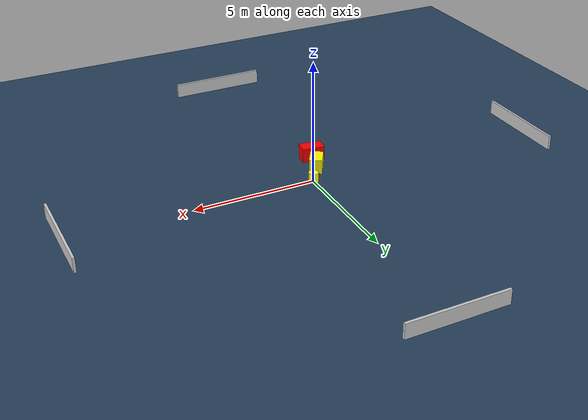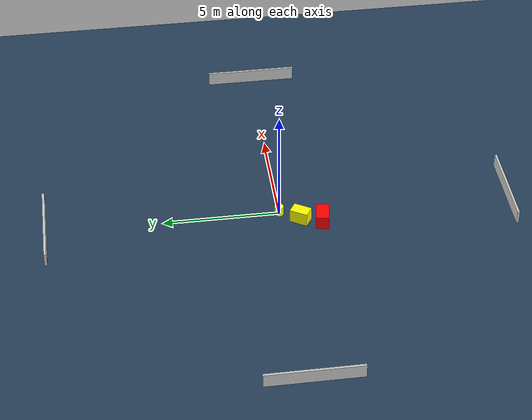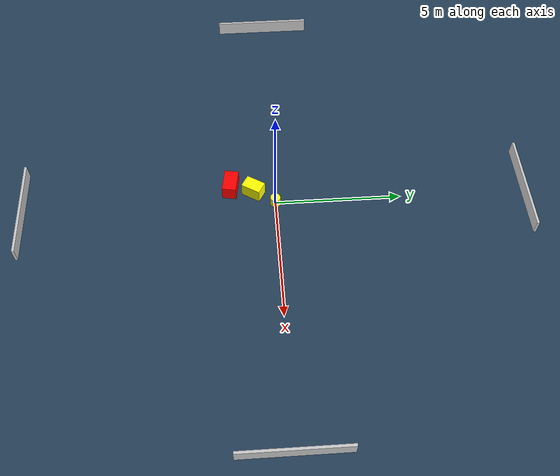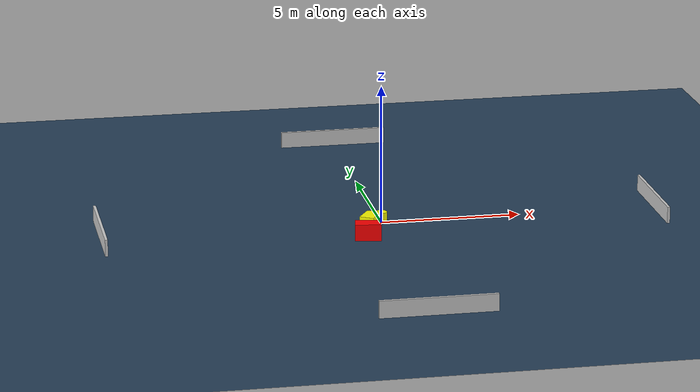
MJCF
<?xml version="1.0" ?>
<mujoco model="generated_environment">
  <option timestep="0.01" integrator="RK4" cone="elliptic"/>
  <default>
    <geom density="1"/>
  </default>
  <asset>
    <texture builtin="gradient" height="3072" name="skybox" rgb1="0.3 0.5 0.7" rgb2="0 0 0" type="skybox" width="512"/>
    <texture builtin="checker" height="300" name="groundplane" rgb1="0.2 0.3 0.4" rgb2="0.1 0.2 0.3" type="2d" width="300"/>
    <material name="groundplane" reflectance="0.2" texrepeat="5 5" texture="groundplane"/>
  </asset>
  <worldbody>
    <light dir="0 0 -1" directional="true" pos="0 0 1.5"/>
    <geom condim="3" friction="0.5 0.005 0.001" material="groundplane" name="floor" pos="0 0 0" size="0 0 0.05" type="plane"/>
    <body name="walls">
      <geom name="wall_1" condim="4" pos="-10.0 0.0 0.3" rgba="0.800000011920929 0.800000011920929 0.800000011920929 1.0" size="0.05 2.0 0.3" type="box"/>
      <geom name="wall_2" condim="4" pos="10.0 0.0 0.3" rgba="0.800000011920929 0.800000011920929 0.800000011920929 1.0" size="0.05 2.0 0.3" type="box"/>
      <geom name="wall_3" condim="4" pos="0.0 -10.0 0.3" rgba="0.800000011920929 0.800000011920929 0.800000011920929 1.0" size="2.0 0.05 0.3" type="box"/>
      <geom name="wall_4" condim="4" pos="0.0 10.0 0.3" rgba="0.800000011920929 0.800000011920929 0.800000011920929 1.0" size="2.0 0.05 0.3" type="box"/>
    </body>
    <body name="robot">
      <joint name="joint_x" type="slide" pos="0 0 0" axis="1 0 0"/>
      <joint name="joint_y" type="slide" pos="0 0 0" axis="0 1 0"/>
      <geom name="robot" type="cylinder" pos="0.0 0.0 0.2" size="0.2 0.2 0.0" mass="5.0" friction="1.0 0.005 0.0001" condim="4" rgba="1.0 1.0 0.0 1.0"/>
    </body>
    <body name="obstacle_1_movable">
      <geom name="obstacle_1_movable" condim="4" pos="-0.5547611009738872 -0.8504515414616578 0.3" euler="0 0 238.6662550670331" friction="0.0 0.005 0.001" rgba="1.0 1.0 0.0 1.0" size="0.3941656768587929 0.2598411649422411 0.3" type="box" mass="0.1"/>
      <joint type="free"/>
    </body>
    <body name="obstacle_2_static">
      <geom name="obstacle_2_static" condim="4" pos="-0.80361949660166 -1.758929022486041 0.3" euler="0 0 260.6766241114701" friction="0.0 0.005 0.001" rgba="1.0 0.0 0.0 1.0" size="0.27816111393135967 0.45838100365645124 0.3" type="box"/>
    </body>
  </worldbody>
  <actuator>
    <motor name="actuator_x" joint="joint_x" gear="1" ctrlrange="-1 1"/>
    <motor name="actuator_y" joint="joint_y" gear="1" ctrlrange="-1 1"/>
  </actuator>
</mujoco>
